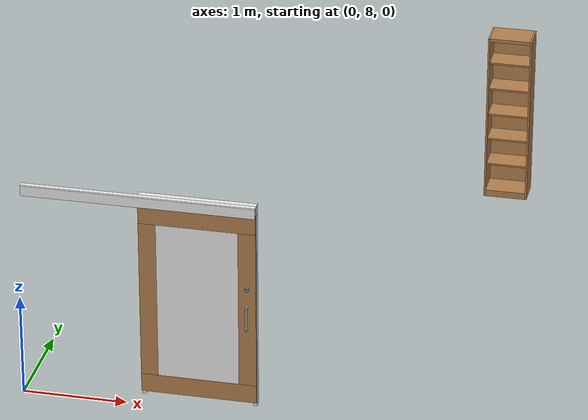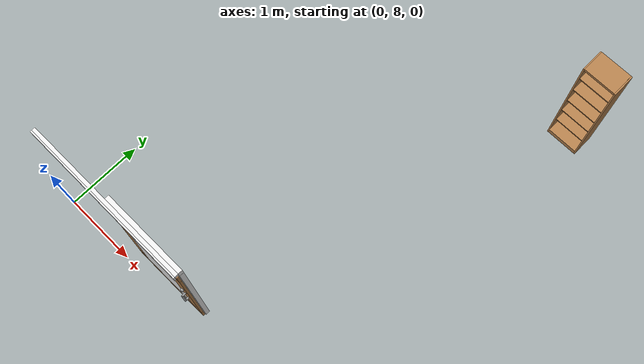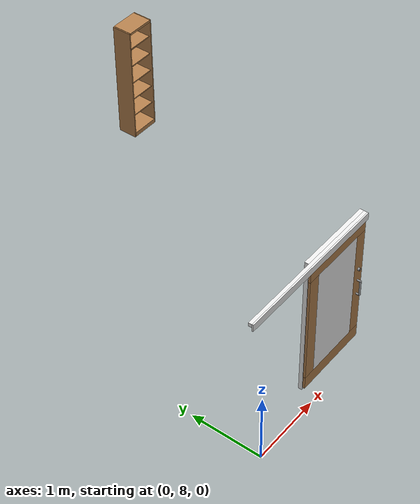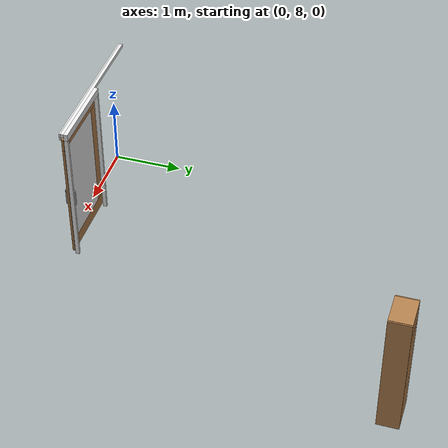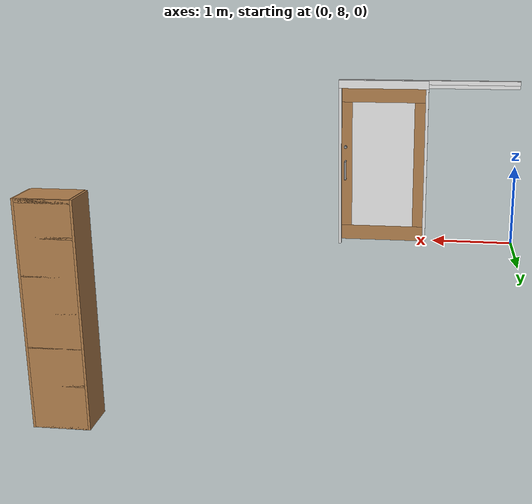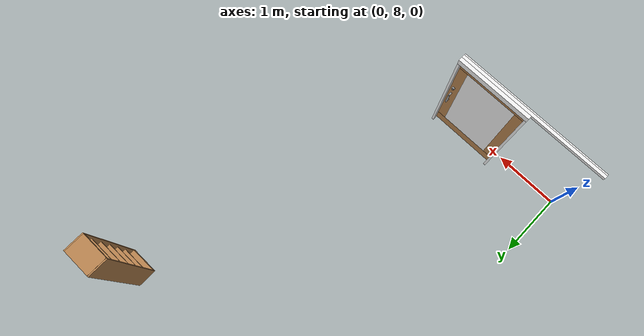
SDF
<sdf version="1.6">
 <world name="default">
  <model name="door_x03y09">
   <joint name="frame_to_world_joint" type="revolute">
    <parent>world</parent>
    <child>frame</child>
    <axis>
     <xyz>0 0 1</xyz>
     <limit><upper>0</upper><lower>0</lower></limit>
     <use_parent_model_frame>1</use_parent_model_frame>
     <dynamics><spring_reference>0</spring_reference><spring_stiffness>0</spring_stiffness></dynamics>
    </axis>
   </joint>
   <link name="frame">
    <inertial>
     <mass>50</mass>
     <inertia><ixx>1</ixx><ixy>0</ixy><ixz>0</ixz><iyy>1</iyy><iyz>0</iyz><izz>1</izz></inertia>
    </inertial>
    <visual name="right_frame">
     <pose>0 0.5325 0.995 0 -0 0</pose>
     <geometry><box><size>0.055 0.035 1.99</size></box></geometry>
     <material>
      <script><uri>model://base_materials/color/scripts</uri><name>hsr_color/white</name></script>
     </material>
    </visual>
    <collision name="collision_right_frame">
     <pose>0 0.5325 0.995 0 -0 0</pose>
     <geometry><box><size>0.055 0.035 1.99</size></box></geometry>
    </collision>
    <visual name="left_frame">
     <pose>0 -0.5325 0.995 0 -0 0</pose>
     <geometry><box><size>0.055 0.035 1.99</size></box></geometry>
     <material>
      <script><uri>model://base_materials/color/scripts</uri><name>hsr_color/white</name></script>
     </material>
    </visual>
    <collision name="collision_left_frame">
     <pose>0 -0.5325 0.995 0 -0 0</pose>
     <geometry><box><size>0.055 0.035 1.99</size></box></geometry>
    </collision>
    <visual name="top_frame">
     <pose>0 0 2.04 0 -0 0</pose>
     <geometry><box><size>0.055 1.1 0.1</size></box></geometry>
     <material>
      <script><uri>model://base_materials/color/scripts</uri><name>hsr_color/white</name></script>
     </material>
    </visual>
    <collision name="collision_top_frame">
     <pose>0 0 2.04 0 -0 0</pose>
     <geometry><box><size>0.055 1.1 0.1</size></box></geometry>
    </collision>
    <visual name="top_guard">
     <pose>0.05 -0.55 2.065 0 -0 0</pose>
     <geometry><box><size>0.045 2.2 0.05</size></box></geometry>
     <material>
      <script><uri>model://base_materials/color/scripts</uri><name>hsr_color/white</name></script>
     </material>
    </visual>
    <collision name="collision_top_guard">
     <pose>0.05 -0.55 2.065 0 -0 0</pose>
     <geometry><box><size>0.045 2.2 0.05</size></box></geometry>
    </collision>
    <visual name="front_guard">
     <pose>0.0825 -0.55 2.04 0 -0 0</pose>
     <geometry><box><size>0.02 2.2 0.1</size></box></geometry>
     <material>
      <script><uri>model://base_materials/color/scripts</uri><name>hsr_color/white</name></script>
     </material>
    </visual>
    <collision name="collision_front_guard">
     <pose>0.0825 -0.55 2.04 0 -0 0</pose>
     <geometry><box><size>0.02 2.2 0.1</size></box></geometry>
    </collision>
   </link>
   <link name="door">
    <pose>-0.0275 0 0 0 -0 0</pose>
    <visual name="glass">
     <pose>0.0775 0 1.025 0 -0 0</pose>
     <geometry><box><size>0.03 0.77 1.58</size></box></geometry>
     <material>
      <script>
       <name>hsr_color/white_transparency1</name>
       <name>hsr_color/cornflowerblue_transparency1</name>
       <uri>__default__</uri>
      </script>
     </material>
    </visual>
    <collision name="collision_glass">
     <pose>0.0775 0 1.025 0 -0 0</pose>
     <geometry><box><size>0.03 0.77 1.58</size></box></geometry>
    </collision>
    <visual name="top_frame">
     <pose>0.0775 0 1.9075 0 -0 0</pose>
     <geometry><box><size>0.03 1.1 0.185</size></box></geometry>
     <material>
      <script><uri>model://base_materials/wood/scripts/wood.material</uri><name>base_materials/wood</name></script>
     </material>
    </visual>
    <collision name="collision_top_frame">
     <pose>0.0775 0 1.9075 0 -0 0</pose>
     <geometry><box><size>0.03 1.1 0.185</size></box></geometry>
    </collision>
    <visual name="right_frame">
     <pose>0.0775 0.4675 1.025 0 -0 0</pose>
     <geometry><box><size>0.03 0.165 1.58</size></box></geometry>
     <material>
      <script><uri>model://base_materials/wood/scripts/wood.material</uri><name>base_materials/wood</name></script>
     </material>
    </visual>
    <collision name="collision_right_frame">
     <pose>0.0775 0.4675 1.025 0 -0 0</pose>
     <geometry><box><size>0.03 0.165 1.58</size></box></geometry>
    </collision>
    <visual name="left_frame">
     <pose>0.0775 -0.4675 1.025 0 -0 0</pose>
     <geometry><box><size>0.03 0.165 1.58</size></box></geometry>
     <material>
      <script><uri>model://base_materials/wood/scripts/wood.material</uri><name>base_materials/wood</name></script>
     </material>
    </visual>
    <collision name="collision_left_frame">
     <pose>0.0775 -0.4675 1.025 0 -0 0</pose>
     <geometry><box><size>0.03 0.165 1.58</size></box></geometry>
    </collision>
    <visual name="bottom_frame">
     <pose>0.0775 0 0.1425 0 -0 0</pose>
     <geometry><box><size>0.03 1.1 0.185</size></box></geometry>
     <material>
      <script><uri>model://base_materials/wood/scripts/wood.material</uri><name>base_materials/wood</name></script>
     </material>
    </visual>
    <collision name="collision_bottom_frame">
     <pose>0.0775 0 0.1425 0 -0 0</pose>
     <geometry><box><size>0.03 1.1 0.185</size></box></geometry>
    </collision>
    <visual name="handle_top_frame">
     <pose>0.0775 0.4675 1.0675 3.14159 1.57079 3.14159</pose>
     <geometry><cylinder><radius>0.0125</radius><length>0.125</length></cylinder></geometry>
     <material>
      <script><uri>model://base_materials/color/scripts</uri><name>hsr_color/grey</name></script>
     </material>
    </visual>
    <collision name="collision_handle_top_frame">
     <pose>0.0775 0.4675 1.0675 3.14159 1.57079 3.14159</pose>
     <geometry><cylinder><radius>0.0125</radius><length>0.125</length></cylinder></geometry>
    </collision>
    <visual name="handle_bottom_frame">
     <pose>0.0775 0.4675 0.8425 3.14159 1.57079 3.14159</pose>
     <geometry><cylinder><radius>0.0125</radius><length>0.125</length></cylinder></geometry>
     <material>
      <script><uri>model://base_materials/color/scripts</uri><name>hsr_color/grey</name></script>
     </material>
    </visual>
    <collision name="collision_handle_bottom_frame">
     <pose>0.0775 0.4675 0.8425 3.14159 1.57079 3.14159</pose>
     <geometry><cylinder><radius>0.0125</radius><length>0.125</length></cylinder></geometry>
    </collision>
    <visual name="handle_front_frame">
     <pose>0.14 0.4675 0.955 0 -0 0</pose>
     <geometry><cylinder><radius>0.0125</radius><length>0.225</length></cylinder></geometry>
     <material>
      <script><uri>model://base_materials/color/scripts</uri><name>hsr_color/grey</name></script>
     </material>
    </visual>
    <collision name="collision_handle_front_frame">
     <pose>0.14 0.4675 0.955 0 -0 0</pose>
     <geometry><cylinder><radius>0.0125</radius><length>0.225</length></cylinder></geometry>
    </collision>
    <visual name="handle_back_frame">
     <pose>0.015 0.4675 0.955 0 -0 0</pose>
     <geometry><cylinder><radius>0.0125</radius><length>0.225</length></cylinder></geometry>
     <material>
      <script><uri>model://base_materials/color/scripts</uri><name>hsr_color/grey</name></script>
     </material>
    </visual>
    <collision name="collision_handle_back_frame">
     <pose>0.015 0.4675 0.955 0 -0 0</pose>
     <geometry><cylinder><radius>0.0125</radius><length>0.225</length></cylinder></geometry>
    </collision>
    <visual name="handle_front_top_corner">
     <pose>0.14 0.4675 1.0675 0 -0 0</pose>
     <geometry><sphere><radius>0.0125</radius></sphere></geometry>
     <material>
      <script><uri>model://base_materials/color/scripts</uri><name>hsr_color/grey</name></script>
     </material>
    </visual>
    <collision name="collision_handle_front_top_corner">
     <pose>0.14 0.4675 1.0675 0 -0 0</pose>
     <geometry><sphere><radius>0.0125</radius></sphere></geometry>
    </collision>
    <visual name="handle_front_bottom_corner">
     <pose>0.14 0.4675 0.8425 0 -0 0</pose>
     <geometry><sphere><radius>0.0125</radius></sphere></geometry>
     <material>
      <script><uri>model://base_materials/color/scripts</uri><name>hsr_color/grey</name></script>
     </material>
    </visual>
    <collision name="collision_handle_front_bottom_corner">
     <pose>0.14 0.4675 0.8425 0 -0 0</pose>
     <geometry><sphere><radius>0.0125</radius></sphere></geometry>
    </collision>
    <visual name="handle_back_top_corner">
     <pose>0.015 0.4675 1.0675 0 -0 0</pose>
     <geometry><sphere><radius>0.0125</radius></sphere></geometry>
     <material>
      <script><uri>model://base_materials/color/scripts</uri><name>hsr_color/grey</name></script>
     </material>
    </visual>
    <collision name="collision_handle_back_top_corner">
     <pose>0.015 0.4675 1.0675 0 -0 0</pose>
     <geometry><sphere><radius>0.0125</radius></sphere></geometry>
    </collision>
    <visual name="handle_back_bottom_corner">
     <pose>0.015 0.4675 0.8425 0 -0 0</pose>
     <geometry><sphere><radius>0.0125</radius></sphere></geometry>
     <material>
      <script><uri>model://base_materials/color/scripts</uri><name>hsr_color/grey</name></script>
     </material>
    </visual>
    <collision name="collision_handle_back_bottom_corner">
     <pose>0.015 0.4675 0.8425 0 -0 0</pose>
     <geometry><sphere><radius>0.0125</radius></sphere></geometry>
    </collision>
    <visual name="handle_lock1">
     <pose>0.0775 0.4675 1.25 3.14159 1.57079 3.14159</pose>
     <geometry><cylinder><radius>0.02</radius><length>0.08</length></cylinder></geometry>
     <material>
      <script><uri>model://base_materials/color/scripts</uri><name>hsr_color/grey</name></script>
     </material>
    </visual>
    <collision name="collision_handle_lock1">
     <pose>0.0775 0.4675 1.25 3.14159 1.57079 3.14159</pose>
     <geometry><cylinder><radius>0.02</radius><length>0.08</length></cylinder></geometry>
    </collision>
    <visual name="handle_lock2">
     <pose>0.0775 0.4675 1.25 3.14159 1.57079 3.14159</pose>
     <geometry><cylinder><radius>0.015</radius><length>0.09</length></cylinder></geometry>
     <material>
      <script><uri>model://base_materials/color/scripts</uri><name>hsr_color/grey</name></script>
     </material>
    </visual>
    <collision name="collision_handle_lock2">
     <pose>0.0775 0.4675 1.25 3.14159 1.57079 3.14159</pose>
     <geometry><cylinder><radius>0.015</radius><length>0.09</length></cylinder></geometry>
    </collision>
    <velocity_decay><linear>0</linear><angular>0</angular></velocity_decay>
    <inertial>
     <inertia><ixx>1</ixx><ixy>0</ixy><ixz>0</ixz><iyy>1</iyy><iyz>0</iyz><izz>1</izz></inertia>
     <mass>1</mass>
    </inertial>
   </link>
   <joint name="top_sliding_joint" type="prismatic">
    <parent>frame</parent>
    <child>door</child>
    <axis>
     <dynamics>
      <damping>1</damping>
      <friction>1</friction>
      <spring_reference>0</spring_reference>
      <spring_stiffness>0</spring_stiffness>
     </dynamics>
     <limit><lower>-1</lower><upper>0</upper></limit>
     <xyz>0 1 0</xyz>
     <use_parent_model_frame>1</use_parent_model_frame>
    </axis>
   </joint>
   <static>0</static>
   <pose>1.65 8.23 -0 0 3e-06 -1.5708</pose>
  </model>
  <model name="high_shelf03">
   <link name="link">
    <inertial>
     <mass>5</mass>
     <inertia><ixx>1</ixx><ixy>0</ixy><ixz>0</ixz><iyy>1</iyy><iyz>0</iyz><izz>1</izz></inertia>
    </inertial>
    <visual name="left_board">
     <pose>-0.1475 0.009 0.898 0 -0 0</pose>
     <geometry><box><size>0.295 0.018 1.796</size></box></geometry>
     <material>
      <script>
       <uri>model://base_materials/wood/scripts</uri>
       <uri>model://base_materials/wood/textures</uri>
       <name>base_materials/light_wood</name>
      </script>
     </material>
    </visual>
    <collision name="collision_left_board">
     <pose>-0.1475 0.009 0.898 0 -0 0</pose>
     <geometry><box><size>0.295 0.018 1.796</size></box></geometry>
    </collision>
    <visual name="right_board">
     <pose>-0.1475 0.441 0.898 0 -0 0</pose>
     <geometry><box><size>0.295 0.018 1.796</size></box></geometry>
     <material>
      <script>
       <uri>model://base_materials/wood/scripts</uri>
       <uri>model://base_materials/wood/textures</uri>
       <name>base_materials/light_wood</name>
      </script>
     </material>
    </visual>
    <collision name="collision_right_board">
     <pose>-0.1475 0.441 0.898 0 -0 0</pose>
     <geometry><box><size>0.295 0.018 1.796</size></box></geometry>
    </collision>
    <visual name="top_board">
     <pose>-0.1475 0.225 1.7825 0 -0 0</pose>
     <geometry><box><size>0.295 0.414 0.035</size></box></geometry>
     <material>
      <script>
       <uri>model://base_materials/wood/scripts</uri>
       <uri>model://base_materials/wood/textures</uri>
       <name>base_materials/light_wood</name>
      </script>
     </material>
    </visual>
    <collision name="collision_top_board">
     <pose>-0.1475 0.225 1.7825 0 -0 0</pose>
     <geometry><box><size>0.295 0.414 0.035</size></box></geometry>
    </collision>
    <visual name="1st_shelf">
     <pose>-0.162 0.225 1.51 0 -0 0</pose>
     <geometry><box><size>0.266 0.414 0.018</size></box></geometry>
     <material>
      <script>
       <uri>model://base_materials/wood/scripts</uri>
       <uri>model://base_materials/wood/textures</uri>
       <name>base_materials/light_wood</name>
      </script>
     </material>
    </visual>
    <collision name="collision_1st_shelf">
     <pose>-0.162 0.225 1.51 0 -0 0</pose>
     <geometry><box><size>0.266 0.414 0.018</size></box></geometry>
    </collision>
    <visual name="2nd_shelf">
     <pose>-0.162 0.225 1.22 0 -0 0</pose>
     <geometry><box><size>0.266 0.414 0.018</size></box></geometry>
     <material>
      <script>
       <uri>model://base_materials/wood/scripts</uri>
       <uri>model://base_materials/wood/textures</uri>
       <name>base_materials/light_wood</name>
      </script>
     </material>
    </visual>
    <collision name="collision_2nd_shelf">
     <pose>-0.162 0.225 1.22 0 -0 0</pose>
     <geometry><box><size>0.266 0.414 0.018</size></box></geometry>
    </collision>
    <visual name="3rd_shelf">
     <pose>-0.162 0.225 0.93 0 -0 0</pose>
     <geometry><box><size>0.266 0.414 0.018</size></box></geometry>
     <material>
      <script>
       <uri>model://base_materials/wood/scripts</uri>
       <uri>model://base_materials/wood/textures</uri>
       <name>base_materials/light_wood</name>
      </script>
     </material>
    </visual>
    <collision name="collision_3rd_shelf">
     <pose>-0.162 0.225 0.93 0 -0 0</pose>
     <geometry><box><size>0.266 0.414 0.018</size></box></geometry>
    </collision>
    <visual name="4th_shelf">
     <pose>-0.162 0.225 0.65 0 -0 0</pose>
     <geometry><box><size>0.266 0.414 0.018</size></box></geometry>
     <material>
      <script>
       <uri>model://base_materials/wood/scripts</uri>
       <uri>model://base_materials/wood/textures</uri>
       <name>base_materials/light_wood</name>
      </script>
     </material>
    </visual>
    <collision name="collision_4th_shelf">
     <pose>-0.162 0.225 0.65 0 -0 0</pose>
     <geometry><box><size>0.266 0.414 0.018</size></box></geometry>
    </collision>
    <visual name="5th_shelf">
     <pose>-0.162 0.225 0.36 0 -0 0</pose>
     <geometry><box><size>0.266 0.414 0.018</size></box></geometry>
     <material>
      <script>
       <uri>model://base_materials/wood/scripts</uri>
       <uri>model://base_materials/wood/textures</uri>
       <name>base_materials/light_wood</name>
      </script>
     </material>
    </visual>
    <collision name="collision_5th_shelf">
     <pose>-0.162 0.225 0.36 0 -0 0</pose>
     <geometry><box><size>0.266 0.414 0.018</size></box></geometry>
    </collision>
    <visual name="bottom_board">
     <pose>-0.1475 0.225 0.035 0 -0 0</pose>
     <geometry><box><size>0.295 0.414 0.07</size></box></geometry>
     <material>
      <script>
       <uri>model://base_materials/wood/scripts</uri>
       <uri>model://base_materials/wood/textures</uri>
       <name>base_materials/light_wood</name>
      </script>
     </material>
    </visual>
    <collision name="collision_bottom_board">
     <pose>-0.1475 0.225 0.035 0 -0 0</pose>
     <geometry><box><size>0.295 0.414 0.07</size></box></geometry>
    </collision>
    <visual name="back_board">
     <pose>-0.286 0.225 0.898 0 -0 0</pose>
     <geometry><box><size>0.018 0.414 1.796</size></box></geometry>
     <material>
      <script>
       <uri>model://base_materials/wood/scripts</uri>
       <uri>model://base_materials/wood/textures</uri>
       <name>base_materials/light_wood</name>
      </script>
     </material>
    </visual>
    <collision name="collision_back_board">
     <pose>-0.286 0.225 0.898 0 -0 0</pose>
     <geometry><box><size>0.018 0.414 1.796</size></box></geometry>
    </collision>
    <velocity_decay><linear>0</linear><angular>0</angular></velocity_decay>
   </link>
   <static>1</static>
   <pose>3.55 12.87 0 0 0 -1.5708</pose>
  </model>
 </world>
</sdf>
